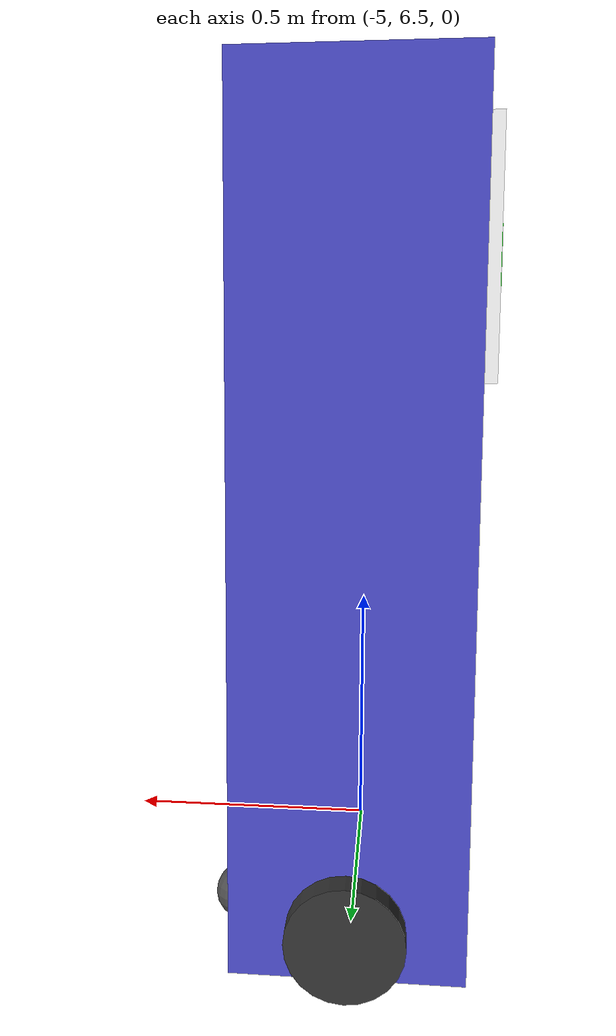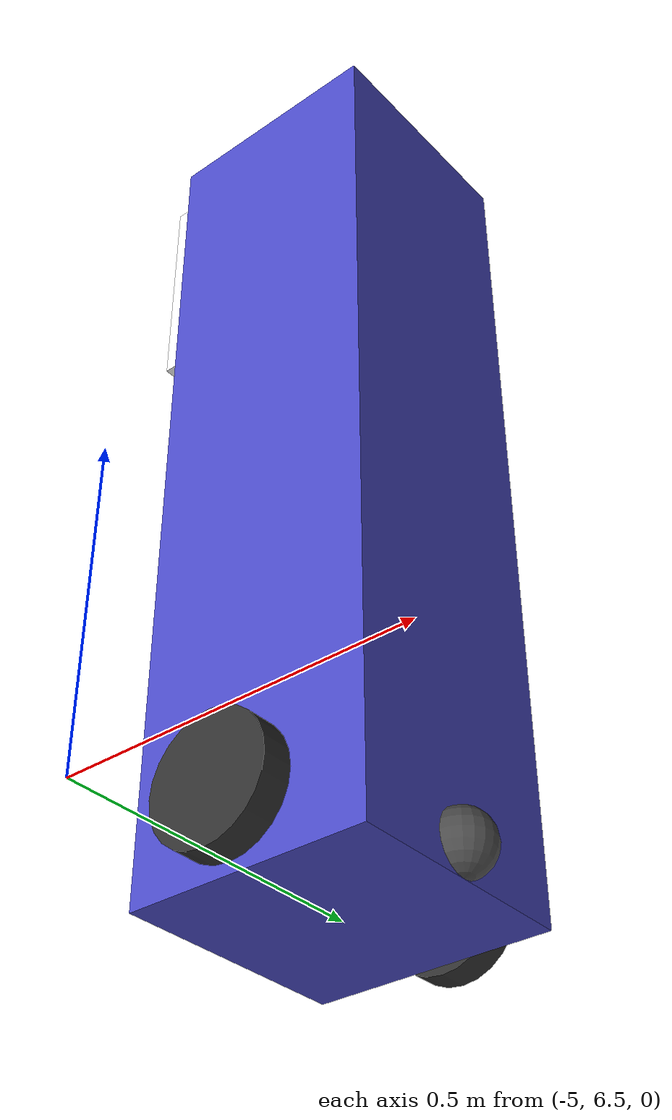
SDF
<?xml version="1.0"?>
<sdf version="1.6">
  <model name="person_with_apriltag">
    <pose>-5 7 0 0 0 0</pose>

    <!-- Main body (person-sized box) -->
    <link name="base_link">
      <inertial>
        <mass>50.0</mass>
        <inertia>
          <ixx>3.33</ixx>
          <iyy>3.33</iyy>
          <izz>0.67</izz>
        </inertia>
      </inertial>

      <!-- Body collision -->
      <collision name="body_collision">
        <pose>0 0 0.75 0 0 0</pose>
        <geometry>
          <box>
            <size>0.4 0.4 1.5</size>
          </box>
        </geometry>
      </collision>

      <!-- Body visual (simple person shape) -->
      <visual name="body_visual">
        <pose>0 0 0.75 0 0 0</pose>
        <geometry>
          <box>
            <size>0.4 0.4 1.5</size>
          </box>
        </geometry>
        <material>
          <ambient>0.3 0.3 0.8 1</ambient>
          <diffuse>0.3 0.3 0.8 1</diffuse>
        </material>
      </visual>

      <!-- AprilTag on the back -->
      <visual name="apriltag_board">
        <pose>-0.21 0 1.2 0 1.5708 0</pose>  <!-- On back, standing upright -->
        <geometry>
          <box>
            <size>0.4 0.4 0.02</size>
          </box>
        </geometry>
        <material>
          <ambient>1 1 1 1</ambient>
          <diffuse>1 1 1 1</diffuse>
        </material>
      </visual>

      <!-- Black AprilTag pattern -->
      <visual name="apriltag_pattern">
        <pose>-0.22 0 1.2 0 1.5708 0</pose>
        <geometry>
          <box>
            <size>0.25 0.25 0.01</size>
          </box>
        </geometry>
        <material>
          <ambient>0 0 0 1</ambient>
          <diffuse>0 0 0 1</diffuse>
        </material>
      </visual>

      <!-- Green indicator center -->
      <visual name="apriltag_indicator">
        <pose>-0.23 0 1.2 0 1.5708 0</pose>
        <geometry>
          <box>
            <size>0.1 0.1 0.005</size>
          </box>
        </geometry>
        <material>
          <ambient>0 1 0 1</ambient>
          <diffuse>0 1 0 1</diffuse>
          <emissive>0 0.5 0 1</emissive>
        </material>
      </visual>
    </link>

    <!-- Left wheel -->
    <link name="left_wheel">
      <pose>0 0.25 0.1 1.5708 0 0</pose>
      <inertial>
        <mass>2.0</mass>
        <inertia>
          <ixx>0.01</ixx>
          <iyy>0.01</iyy>
          <izz>0.01</izz>
        </inertia>
      </inertial>
      <collision name="collision">
        <geometry>
          <cylinder>
            <radius>0.1</radius>
            <length>0.05</length>
          </cylinder>
        </geometry>
      </collision>
      <visual name="visual">
        <geometry>
          <cylinder>
            <radius>0.1</radius>
            <length>0.05</length>
          </cylinder>
        </geometry>
        <material>
          <ambient>0.2 0.2 0.2 1</ambient>
          <diffuse>0.2 0.2 0.2 1</diffuse>
        </material>
      </visual>
    </link>

    <!-- Right wheel -->
    <link name="right_wheel">
      <pose>0 -0.25 0.1 1.5708 0 0</pose>
      <inertial>
        <mass>2.0</mass>
        <inertia>
          <ixx>0.01</ixx>
          <iyy>0.01</iyy>
          <izz>0.01</izz>
        </inertia>
      </inertial>
      <collision name="collision">
        <geometry>
          <cylinder>
            <radius>0.1</radius>
            <length>0.05</length>
          </cylinder>
        </geometry>
      </collision>
      <visual name="visual">
        <geometry>
          <cylinder>
            <radius>0.1</radius>
            <length>0.05</length>
          </cylinder>
        </geometry>
        <material>
          <ambient>0.2 0.2 0.2 1</ambient>
          <diffuse>0.2 0.2 0.2 1</diffuse>
        </material>
      </visual>
    </link>

    <!-- Caster wheel (front) -->
    <link name="caster">
      <pose>0.2 0 0.05 0 0 0</pose>
      <inertial>
        <mass>0.5</mass>
        <inertia>
          <ixx>0.001</ixx>
          <iyy>0.001</iyy>
          <izz>0.001</izz>
        </inertia>
      </inertial>
      <collision name="collision">
        <geometry>
          <sphere>
            <radius>0.05</radius>
          </sphere>
        </geometry>
        <surface>
          <friction>
            <ode>
              <mu>0.0</mu>
              <mu2>0.0</mu2>
            </ode>
          </friction>
        </surface>
      </collision>
      <visual name="visual">
        <geometry>
          <sphere>
            <radius>0.05</radius>
          </sphere>
        </geometry>
        <material>
          <ambient>0.3 0.3 0.3 1</ambient>
          <diffuse>0.3 0.3 0.3 1</diffuse>
        </material>
      </visual>
    </link>

    <!-- Joints -->
    <joint name="left_wheel_joint" type="revolute">
      <parent>base_link</parent>
      <child>left_wheel</child>
      <axis>
        <xyz>0 0 1</xyz>
      </axis>
    </joint>

    <joint name="right_wheel_joint" type="revolute">
      <parent>base_link</parent>
      <child>right_wheel</child>
      <axis>
        <xyz>0 0 1</xyz>
      </axis>
    </joint>

    <joint name="caster_joint" type="ball">
      <parent>base_link</parent>
      <child>caster</child>
    </joint>

    <!-- Differential drive plugin -->
    <plugin name="differential_drive_controller" filename="libgazebo_ros_diff_drive.so">
      <update_rate>50</update_rate>
      <left_joint>left_wheel_joint</left_joint>
      <right_joint>right_wheel_joint</right_joint>
      <wheel_separation>0.5</wheel_separation>
      <wheel_diameter>0.2</wheel_diameter>
      <max_wheel_torque>20</max_wheel_torque>
      <command_topic>person_cmd_vel</command_topic>
      <odometry_topic>person_odom</odometry_topic>
      <odometry_frame>odom</odometry_frame>
      <robot_base_frame>base_link</robot_base_frame>
      <publish_odom>true</publish_odom>
      <publish_odom_tf>false</publish_odom_tf>
      <publish_wheel_tf>false</publish_wheel_tf>
    </plugin>
  </model>
</sdf>
